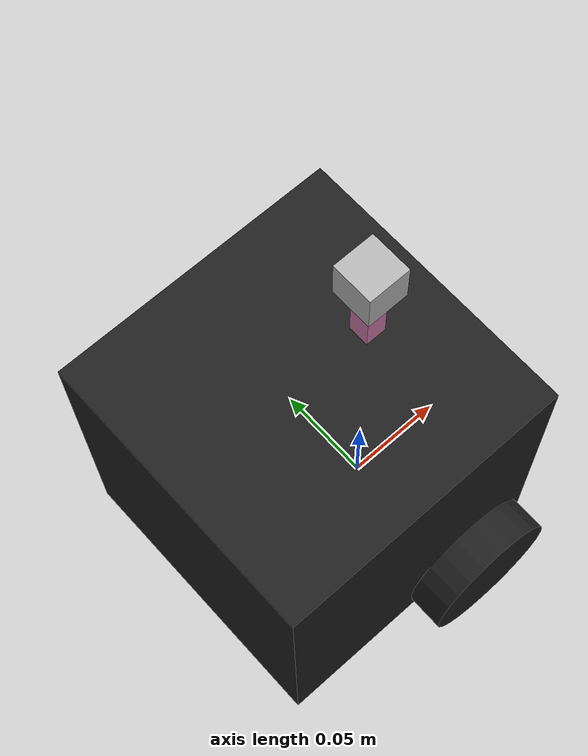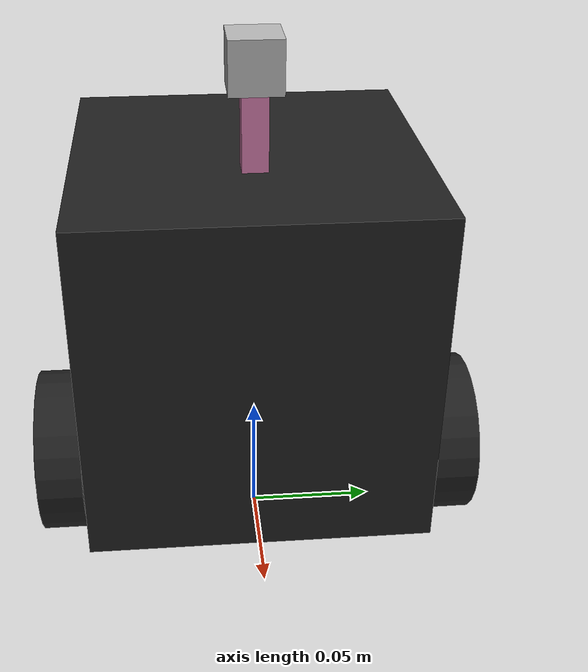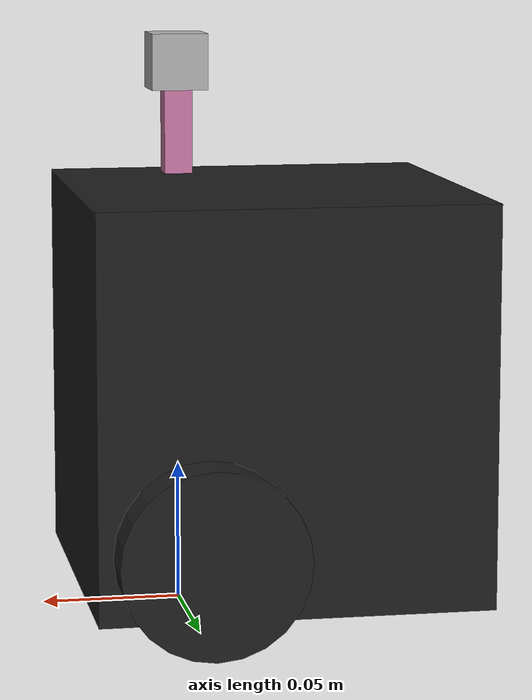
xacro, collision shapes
<?xml version="1.0" ?>
<robot name="turtlebot3_burger" xmlns:xacro="http://ros.org/wiki/xacro">
  <xacro:include filename="$(find gazebo_models)/models/turtlebot3/common_properties.xacro"/>
  <xacro:include filename="$(find gazebo_models)/models/turtlebot3/turtlebot3_burger.gazebo.xacro"/>

  <link name="base_footprint"/>

  <joint name="base_joint" type="fixed">
    <parent link="base_footprint"/>
    <child link="base_link"/>
    <origin xyz="0.0 0.0 0.010" rpy="0 0 0"/>
  </joint>

  <link name="base_link">
    <visual>
      <origin xyz="-0.032 0 0.0" rpy="0 0 0"/>
      <geometry>
        <mesh filename="package://gazebo_models/models/turtlebot3/burger_base.stl" scale="0.001 0.001 0.001"/>
      </geometry>
      <material name="light_black"/>
    </visual>

    <collision>
      <origin xyz="-0.032 0 0.070" rpy="0 0 0"/>
      <geometry>
        <box size="0.140 0.140 0.143"/>
      </geometry>
    </collision>

    <inertial>
      <origin xyz="0 0 0" rpy="0 0 0"/>
      <mass value="8.2573504e-01"/>
      <inertia ixx="2.2124416e-03" ixy="-1.2294101e-05" ixz="3.4938785e-05"
               iyy="2.1193702e-03" iyz="-5.0120904e-06"
               izz="2.0064271e-03" />
    </inertial>
  </link>

  <joint name="wheel_left_joint" type="continuous">
    <parent link="base_link"/>
    <child link="wheel_left_link"/>
    <origin xyz="0.0 0.08 0.023" rpy="-1.57 0 0"/>
    <axis xyz="0 0 1"/>
  </joint>

  <link name="wheel_left_link">
    <visual>
      <origin xyz="0 0 0" rpy="1.57 0 0"/>
      <geometry>
        <mesh filename="package://gazebo_models/models/turtlebot3/left_tire.stl" scale="0.001 0.001 0.001"/>
      </geometry>
      <material name="dark"/>
    </visual>

    <collision>
      <origin xyz="0 0 0" rpy="0 0 0"/>
      <geometry>
        <cylinder length="0.018" radius="0.033"/>
      </geometry>
    </collision>

    <inertial>
      <origin xyz="0 0 0" />
      <mass value="2.8498940e-02" />
      <inertia ixx="1.1175580e-05" ixy="-4.2369783e-11" ixz="-5.9381719e-09"
               iyy="1.1192413e-05" iyz="-1.4400107e-11"
               izz="2.0712558e-05" />
      </inertial>
  </link>

  <joint name="wheel_right_joint" type="continuous">
    <parent link="base_link"/>
    <child link="wheel_right_link"/>
    <origin xyz="0.0 -0.080 0.023" rpy="-1.57 0 0"/>
    <axis xyz="0 0 1"/>
  </joint>

  <link name="wheel_right_link">
    <visual>
      <origin xyz="0 0 0" rpy="1.57 0 0"/>
      <geometry>
        <mesh filename="package://gazebo_models/models/turtlebot3/right_tire.stl" scale="0.001 0.001 0.001"/>
      </geometry>
      <material name="dark"/>
    </visual>

    <collision>
      <origin xyz="0 0 0" rpy="0 0 0"/>
      <geometry>
        <cylinder length="0.018" radius="0.033"/>
      </geometry>
    </collision>

    <inertial>
      <origin xyz="0 0 0" />
      <mass value="2.8498940e-02" />
      <inertia ixx="1.1175580e-05" ixy="-4.2369783e-11" ixz="-5.9381719e-09"
               iyy="1.1192413e-05" iyz="-1.4400107e-11"
               izz="2.0712558e-05" />
      </inertial>
  </link>

  <joint name="caster_back_joint" type="fixed">
    <parent link="base_link"/>
    <child link="caster_back_link"/>
    <origin xyz="-0.081 0 -0.004" rpy="-1.57 0 0"/>
  </joint>

  <link name="caster_back_link">
    <collision>
      <origin xyz="0 0.001 0" rpy="0 0 0"/>
      <geometry>
        <box size="0.030 0.009 0.020"/>
      </geometry>
    </collision>

    <inertial>
      <origin xyz="0 0 0" />
      <mass value="0.005" />
      <inertia ixx="0.001" ixy="0.0" ixz="0.0"
               iyy="0.001" iyz="0.0"
               izz="0.001" />
    </inertial>
  </link>

  <joint name="imu_joint" type="fixed">
    <parent link="base_link"/>
    <child link="imu_link"/>
    <origin xyz="-0.032 0 0.068" rpy="0 0 0"/>
  </joint>

  <link name="imu_link"/>

  <!-- insert the camera link -->
  <joint name="camera_joint_yaw" type="continuous">
    <parent link="base_link"/>
    <child link="camera_medium"/>
    <origin xyz="0 0 0.162" rpy="0 0 0"/>
    <axis xyz="0 0 1"/>
    <limit effort="5" velocity="3"/>
  </joint>

  <link name="camera_medium">
    <collision>
      <origin xyz="0 0 0" rpy="0 0 0"/>
      <geometry>
        <box size="0.01 0.01 0.03"/>
      </geometry>
    </collision>
    <visual>
      <origin xyz="0 0 0" rpy="0 0 0"/>
      <geometry>
	    <box size="0.01 0.01 0.03"/>
      </geometry>
    </visual>
    <inertial>
      <mass value="0.05" />
      <origin xyz="0 0 0" />
      <inertia ixx="0.001" ixy="0.0" ixz="0.0"
               iyy="0.001" iyz="0.0"
               izz="0.001" />
    </inertial>
  </link>

  <joint name="camera_joint_pitch" type="continuous">
    <parent link="camera_medium"/>
    <child link="camera_link"/>
    <origin xyz="0 0 0.025" rpy="0 0 0"/>
    <axis xyz="0 1 0"/>
    <limit effort="5" velocity="3"/>
  </joint>

  <link name="camera_link">
    <collision>
      <origin xyz="0 0 0" rpy="0 0 0"/>
      <geometry>
        <box size="0.02 0.02 0.02"/>
      </geometry>
    </collision>
    <visual>
      <origin xyz="0 0 0" rpy="0 0 0"/>
      <geometry>
	    <box size="0.02 0.02 0.02"/>
      </geometry>
    </visual>
    <inertial>
      <mass value="0.03" />
      <origin xyz="0 0 0" />
      <inertia ixx="0.001" ixy="0.0" ixz="0.0"
               iyy="0.001" iyz="0.0"
               izz="0.001" />
    </inertial>
  </link>

  <transmission name="camera_trans_yaw">
    <type>transmission_interface/SimpleTransmission</type>
    <joint name="camera_joint_yaw">
      <hardwareInterface>PositionJointInterface</hardwareInterface>
    </joint>
    <actuator name="camera_motor_yaw">
      <mechanicalReduction>1</mechanicalReduction>
    </actuator>
  </transmission>

  <transmission name="camera_trans_pitch">
    <type>transmission_interface/SimpleTransmission</type>
    <joint name="camera_joint_pitch">
      <hardwareInterface>PositionJointInterface</hardwareInterface>
    </joint>
    <actuator name="camera_motor_pitch">
      <mechanicalReduction>1</mechanicalReduction>
    </actuator>
  </transmission>
</robot>
